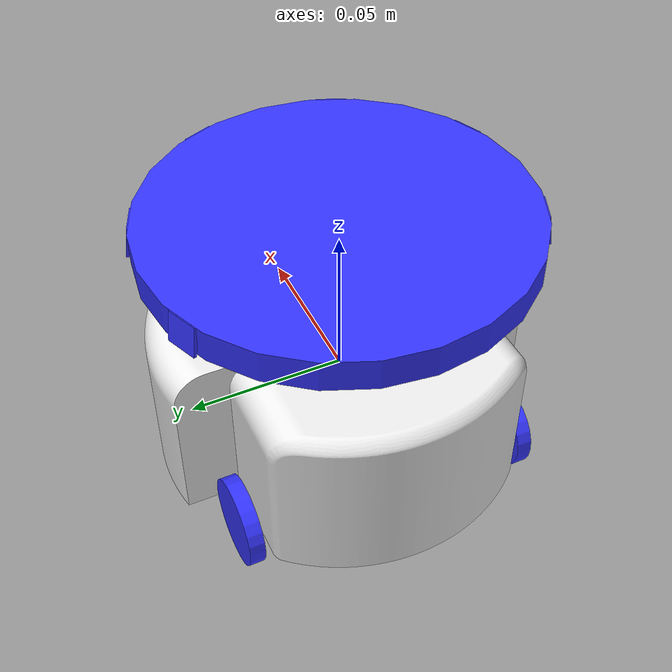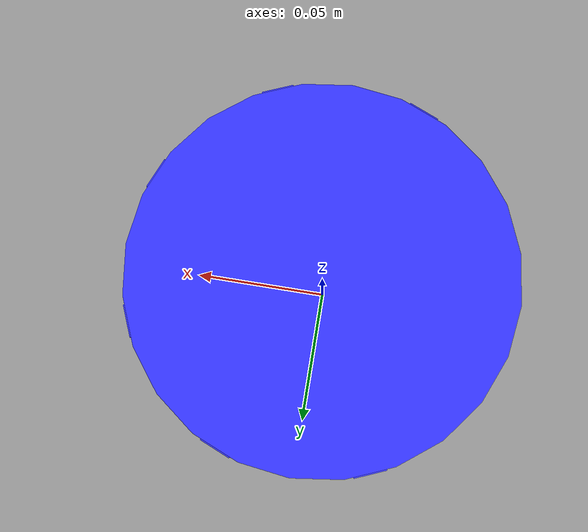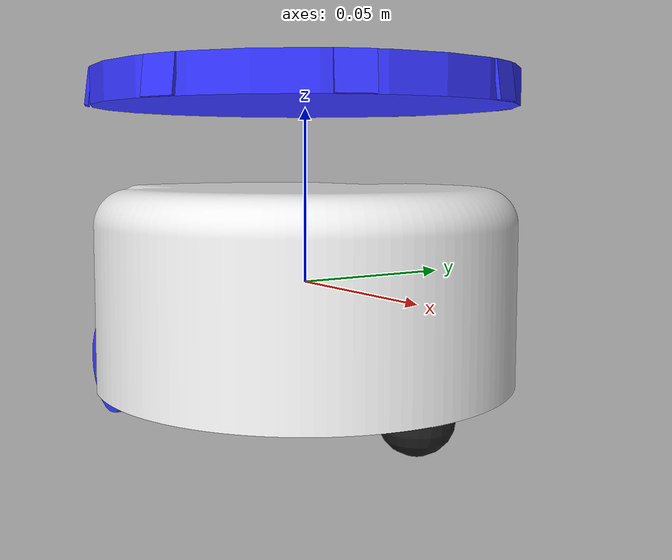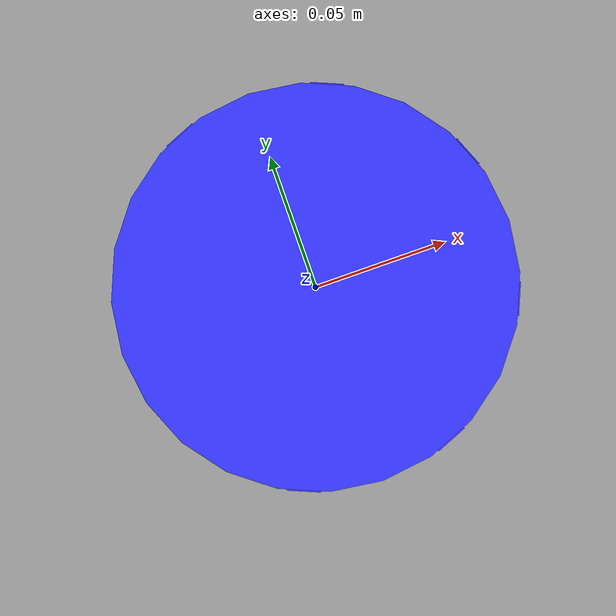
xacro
<?xml version="1.0"?>
<robot xmlns:xacro="http://www.ros.org/wiki/xacro">

    <xacro:include filename="inertial_macros.xacro"/>
    <xacro:include filename="gazebo_sensor.xacro"/>

    <!-- dimension de las piezas de robot -->
    <xacro:property name="ancho_r" value="0.005" />
    <xacro:property name="radio_r" value="0.014" />
    <xacro:property name="radio_e" value="0.01" />

    <!-- distribucion de angulos -->
    <xacro:property name="angle_sensor" value="45" />

    <!-- link para la odometria -->
    <link name="base_footprint">
    </link>

    <joint name="base_footprint_joint" type="fixed">
        <parent link="base_link"/>
        <child link="base_footprint"/>
        <origin xyz="0 0 0"/>
    </joint>

    <!-- base del robot -->
    <link name="base_link">
    </link>

    <joint name="base_link" type="fixed">
        <parent link="base_link"/>
        <child link="chassis"/>
        <origin xyz="0 0 0"/>
    </joint>

    <!-- chassis link -->
    <link name="chassis">
        <visual>
            <origin xyz="0.0 0 0.0"/>
            <geometry>
                <mesh filename="file://$(find proyecto_myrobbie3)/meshes/chassis.dae"/>
            </geometry>
            <material name="white"/>
        </visual>
        <collision>
            <origin xyz="0.0 0.0 0.0"/>
            <geometry>
                <mesh filename="file://$(find proyecto_myrobbie3)/meshes/chassis.dae"/>
            </geometry>
        </collision>

        <xacro:inertial_box mass="0.32" x="0.12" y="0.08" z="0.05">
            <origin xyz="0.0 0.0 0.0" rpy="0.0 0.0 0.0"/>
        </xacro:inertial_box>
    </link>

    <!-- left wheel joint -->
    <joint name="left_wheel_joint" type="continuous">
        <parent link="chassis"/>
        <child link="left_wheel"/>
        <origin xyz="-0.0283 0.0465 -0.0235" rpy="-${pi/2} 0 0"/>
        <axis xyz="0 0 1"/>
    </joint>

    <!-- left wheel link -->
    <link name="left_wheel">
        <visual>
            <geometry>
                <cylinder radius="${radio_r}" length="${ancho_r}"/>
            </geometry>
            <material name="blue"/>
        </visual>
        <collision>
            <geometry>
                <cylinder radius="${radio_r}" length="${ancho_r}"/>
            </geometry>
        </collision>

        <xacro:inertial_cylinder mass="0.04" length="${ancho_r}" radius="${radio_r}">
            <origin xyz="0 0 0" rpy="0 0 0"/>
        </xacro:inertial_cylinder>
    </link>

    <!-- right wheel joint -->
    <joint name="right_wheel_joint" type="continuous">
        <parent link="chassis"/>
        <child link="right_wheel"/>
        <origin xyz="-0.0283 -0.0465 -0.0235" rpy="${pi/2} 0 0"/>
        <axis xyz="0 0 -1"/>
    </joint>

    <!-- right wheel link -->
    <link name="right_wheel">
        <visual>
            <geometry>
                <cylinder radius="${radio_r}" length="${ancho_r}"/>
            </geometry>
            <material name="blue"/>
        </visual>
        <collision>
            <geometry>
                <cylinder radius="${radio_r}" length="${ancho_r}"/>
            </geometry>
        </collision>

        <xacro:inertial_cylinder mass="0.04" length="${ancho_r}" radius="${radio_r}">
            <origin xyz="0 0 0" rpy="0 0 0"/>
        </xacro:inertial_cylinder>

    </link>

    <!-- caster wheel joint -->
    <joint name="caster_wheel_joint" type="fixed">
        <parent link="chassis"/>
        <child link="caster_wheel"/>
        <origin xyz="0.05 0 -0.0275"/>
    </joint>

    <!-- caster wheels -->
    <link name="caster_wheel">
        <visual>
            <geometry>
                <sphere radius="${radio_e}"/>
            </geometry>
            <material name="black"/>
        </visual>
        <collision>
            <geometry>
                <sphere radius="${radio_e}"/>
            </geometry>
        </collision>

        <xacro:inertial_sphere mass="0.03" radius="${radio_e}">
            <origin xyz="0 0 0" rpy="0 0 0"/>
        </xacro:inertial_sphere>
    </link>

    <!-- sensor tof -->
    <link name="laser_frame">
        <visual>
            <origin xyz="0.0 0 0.0"/>
            <geometry>
                <cylinder radius="0.06" length="0.01"/>
            </geometry>
            <material name="blue"/>
        </visual>
        <collision>
            <origin xyz="0.0 0.0 0.0"/>
            <geometry>
                <cylinder radius="0.06" length="0.01"/>
            </geometry>
        </collision>
    </link>

    <joint name="joint_chassis" type="fixed">
        <origin xyz="0.0 0.0 0.055" rpy="0.0 0.0 ${radians(-90)}"/>
        <parent link="chassis"/>
        <child link="laser_frame"/>
    </joint>

    <xacro:pose_sensor name_sensor="sensor_tof_1" angle="${angle_sensor*(-1 + 0.5)}" parent_link="laser_frame" />
    <xacro:pose_sensor name_sensor="sensor_tof_2" angle="${angle_sensor*(0 + 0.5)}" parent_link="laser_frame" />
    <xacro:pose_sensor name_sensor="sensor_tof_3" angle="${angle_sensor*(1 + 0.5)}" parent_link="laser_frame" />
    <xacro:pose_sensor name_sensor="sensor_tof_4" angle="${angle_sensor*(2 + 0.5)}" parent_link="laser_frame" />
    <xacro:pose_sensor name_sensor="sensor_tof_5" angle="${angle_sensor*(3 + 0.5)}" parent_link="laser_frame" />
    <xacro:pose_sensor name_sensor="sensor_tof_6" angle="${angle_sensor*(4 + 0.5)}" parent_link="laser_frame" />

    <gazebo reference="chassis">
        <material>Gazebo/White</material>
    </gazebo>

    <gazebo reference="left_wheel">
        <material>Gazebo/Blue</material>
    </gazebo>

    <gazebo reference="right_wheel">
        <material>Gazebo/Blue</material>
    </gazebo>

    <gazebo reference="laser_frame">
        <material>Gazebo/Red</material>
    </gazebo>

    <gazebo reference="caster_wheel">
        <material>Gazebo/Black</material>
        <mu1 value = "0.001" />
        <mu2 value = "0.001" />
    </gazebo>

</robot>

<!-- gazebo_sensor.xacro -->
<robot xmlns:xacro="http://www.ros.org/wiki/xacro">

  <xacro:macro name="pose_sensor" params="name_sensor angle parent_link">
    <link name="${name_sensor}">
      <visual name="">
        <geometry>
          <box size="0.001 0.01 0.01"/>
        </geometry>
        <material name="blue">
          <color rgba= "0.2 0.2 1 1"/>
        </material>
      </visual>

      <collision>
        <geometry>
          <box size="0.001 0.01 0.01"/>
        </geometry>
      </collision>
    </link>

    <joint name="joint_${name_sensor}" type="fixed">
      <origin xyz="${0.06*cos(radians(angle))} ${0.06*sin(radians(angle))} 0.0" rpy="0.0 -${radians(7.266)} ${radians(angle)}"/>
      <parent link="${parent_link}"/>
      <child link="${name_sensor}"/>
    </joint>

    <gazebo reference="${name_sensor}">
      <material>Gazebo/Blue</material>
      <sensor type="ray" name="range_${name_sensor}">
        <visualize>true</visualize>
        <ray>
          <scan>
            <horizontal>
              <samples>10</samples>
              <resolution>1</resolution>
              <min_angle>-${radians(12.5)}</min_angle>
              <max_angle>${radians(12.5)}</max_angle>
            </horizontal>
            <vertical>
              <samples>10</samples>
              <resolution>1</resolution>
              <min_angle>-${radians(12.5)}</min_angle>
              <max_angle>${radians(12.5)}</max_angle>
            </vertical>
          </scan>
          <range>
            <min>0.100</min>
            <max>0.600</max>
            <resolution>0.003</resolution>
          </range>
          <!-- Using gazebo's noise instead of plugin's -->
        </ray>
        <!-- Using gazebo's update rate instead of plugin's -->
        <update_rate>30</update_rate>
        <plugin name="gazebo_ros_range_controller" filename="libgazebo_ros_ray_sensor.so">
          <!-- Change namespace and output topic so published topic is /rrbot/laser/scan -->
          <ros>
            <namespace>/${name_sensor}</namespace>
            <remapping>~/out:=range</remapping>
          </ros>
          <!-- Set output to sensor_msgs/Range to get same output type as gazebo_ros_range -->
          <output_type>sensor_msgs/Range</output_type>
          <radiation_type>infrared</radiation_type>
          <frame_name>${name_sensor}</frame_name>
        </plugin>
      </sensor>
    </gazebo>
  </xacro:macro>
</robot>
